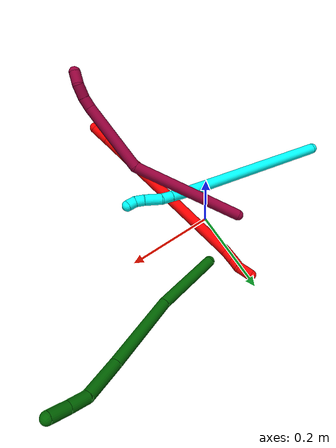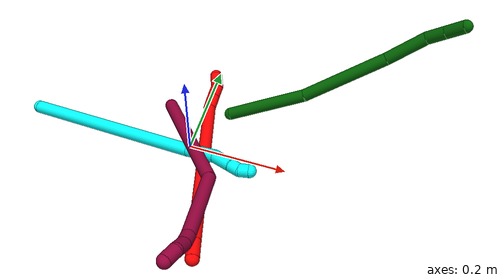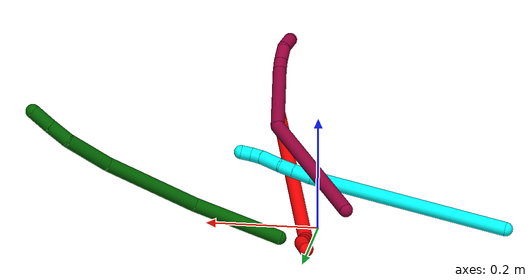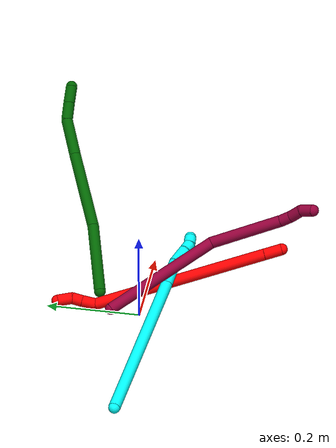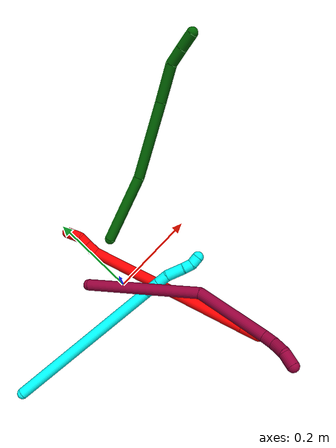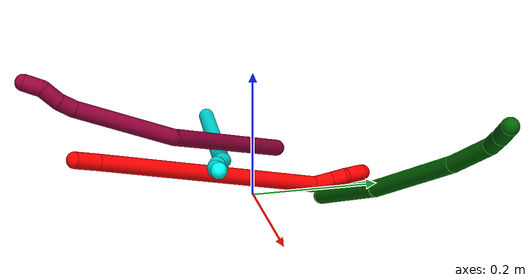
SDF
<sdf version="1.7">
 <world name="default">
  <model name="photoneo_s_sensor">
   <static>1</static>
   <pose>0 0 2 1.57079 1.57079 3.14159</pose>
   <link name="link">
    <inertial><mass>0.1</mass></inertial>
    <sensor name="sensor" type="depth">
     <update_rate>30</update_rate>
     <camera>
      <horizontal_fov>1.22</horizontal_fov>
      <image><width>1920</width><height>1200</height><format>B8G8R8</format></image>
      <clip><near>0.1</near><far>4</far></clip>
      <depth_camera><output>points</output></depth_camera>
     </camera>
     <plugin name="camera_plugin" filename="libgazebo_ros_depth_camera.so">
      <baseline>0.2</baseline>
      <alwaysOn>1</alwaysOn>
      <updateRate>0.0</updateRate>
      <cameraName>camera_ir</cameraName>
      <imageTopicName>/camera/color/image_raw</imageTopicName>
      <cameraInfoTopicName>/camera/color/camera_info</cameraInfoTopicName>
      <depthImageTopicName>/camera/depth/image_raw</depthImageTopicName>
      <depthImageCameraInfoTopicName>/camera/depth/camera_info</depthImageCameraInfoTopicName>
      <pointCloudTopicName>/camera/depth/points</pointCloudTopicName>
      <frameName>fr_optical</frameName>
      <pointCloudCutoff>0.1</pointCloudCutoff>
      <pointCloudCutoffMax>2.0</pointCloudCutoffMax>
      <distortionK1>0</distortionK1>
      <distortionK2>0</distortionK2>
      <distortionK3>0</distortionK3>
      <distortionT1>0</distortionT1>
      <distortionT2>0</distortionT2>
      <CxPrime>0</CxPrime>
      <Cx>0</Cx>
      <Cy>0</Cy>
      <focalLength>0</focalLength>
      <hackBaseline>0</hackBaseline>
     </plugin>
    </sensor>
   </link>
  </model>
  <model name="bin">
   <static>1</static>
   <link name="bottom">
    <collision name="collision-bottom">
     <pose>0 0 -0.01 0 -0 0</pose>
     <geometry><box><size>0.8 0.6 0.02</size></box></geometry>
     <surface>
      <friction><ode><mu>100</mu><mu2>100</mu2></ode></friction>
      <contact><collide_bitmask>65535</collide_bitmask></contact>
     </surface>
    </collision>
   </link>
   <link name="west_wall">
    <collision name="collision-west_wall">
     <pose>-0.41 0 0.1 0 -0 0</pose>
     <geometry><box><size>0.02 0.6 0.2</size></box></geometry>
     <surface>
      <friction><ode><mu>100</mu><mu2>100</mu2></ode></friction>
      <contact><collide_bitmask>65535</collide_bitmask></contact>
     </surface>
    </collision>
   </link>
   <link name="east_wall">
    <collision name="collision-east_wall">
     <pose>0.41 0 0.1 0 -0 0</pose>
     <geometry><box><size>0.02 0.6 0.2</size></box></geometry>
     <surface>
      <friction><ode><mu>100</mu><mu2>100</mu2></ode></friction>
      <contact><collide_bitmask>65535</collide_bitmask></contact>
     </surface>
    </collision>
   </link>
   <link name="south_wall">
    <collision name="collision-south_wall">
     <pose>0 -0.31 0.1 0 -0 0</pose>
     <geometry><box><size>0.8 0.02 0.2</size></box></geometry>
     <surface>
      <friction><ode><mu>100</mu><mu2>100</mu2></ode></friction>
      <contact><collide_bitmask>65535</collide_bitmask></contact>
     </surface>
    </collision>
   </link>
   <link name="north_wall">
    <collision name="collision-north_wall">
     <pose>0 0.31 0.1 0 -0 0</pose>
     <geometry><box><size>0.8 0.02 0.2</size></box></geometry>
     <surface>
      <friction><ode><mu>100</mu><mu2>100</mu2></ode></friction>
      <contact><collide_bitmask>65535</collide_bitmask></contact>
     </surface>
    </collision>
   </link>
  </model>
  <model name="2">
   <static>0</static>
   <link name="2">
    <collision name="collision-cylinder-e_1_1_4">
     <pose>-0.004431 0.016412 -0.008983 -2.07158 -0.232524 0.389127</pose>
     <geometry><cylinder><radius>0.0125</radius><length>0.038455</length></cylinder></geometry>
     <surface>
      <friction><ode><mu>1.16</mu><mu2>1.16</mu2><slip1>0</slip1><slip2>0</slip2></ode></friction>
      <contact><ode><kp>1e+06</kp><kd>1</kd><max_vel>0</max_vel><min_depth>0.001</min_depth></ode></contact>
     </surface>
    </collision>
    <visual name="visual-cylinder-e_1_1_4">
     <pose>-0.004431 0.016412 -0.008983 -2.07158 -0.232524 0.389127</pose>
     <geometry><cylinder><radius>0.0125</radius><length>0.038455</length></cylinder></geometry>
     <material><ambient>1 0 0 1</ambient></material>
    </visual>
    <collision name="collision-cylinder-e_2_4_5">
     <pose>-0.052749 0.192548 -0.108325 -2.08563 -0.234749 0.398995</pose>
     <geometry><cylinder><radius>0.0125</radius><length>0.377372</length></cylinder></geometry>
     <surface>
      <friction><ode><mu>1.16</mu><mu2>1.16</mu2><slip1>0</slip1><slip2>0</slip2></ode></friction>
      <contact><ode><kp>1e+06</kp><kd>1</kd><max_vel>0</max_vel><min_depth>0.001</min_depth></ode></contact>
     </surface>
    </collision>
    <visual name="visual-cylinder-e_2_4_5">
     <pose>-0.052749 0.192548 -0.108325 -2.08563 -0.234749 0.398995</pose>
     <geometry><cylinder><radius>0.0125</radius><length>0.377372</length></cylinder></geometry>
     <material><ambient>1 0 0 1</ambient></material>
    </visual>
    <collision name="collision-cylinder-e_3_5_6">
     <pose>-0.092489 0.365053 -0.205142 -2.03857 0.281924 -0.453404</pose>
     <geometry><cylinder><radius>0.0125</radius><length>0.02982</length></cylinder></geometry>
     <surface>
      <friction><ode><mu>1.16</mu><mu2>1.16</mu2><slip1>0</slip1><slip2>0</slip2></ode></friction>
      <contact><ode><kp>1e+06</kp><kd>1</kd><max_vel>0</max_vel><min_depth>0.001</min_depth></ode></contact>
     </surface>
    </collision>
    <visual name="visual-cylinder-e_3_5_6">
     <pose>-0.092489 0.365053 -0.205142 -2.03857 0.281924 -0.453404</pose>
     <geometry><cylinder><radius>0.0125</radius><length>0.02982</length></cylinder></geometry>
     <material><ambient>1 0 0 1</ambient></material>
    </visual>
    <collision name="collision-cylinder-e_4_6_7">
     <pose>-0.084763 0.387076 -0.216446 -2.05382 0.330384 -0.537996</pose>
     <geometry><cylinder><radius>0.0125</radius><length>0.022061</length></cylinder></geometry>
     <surface>
      <friction><ode><mu>1.16</mu><mu2>1.16</mu2><slip1>0</slip1><slip2>0</slip2></ode></friction>
      <contact><ode><kp>1e+06</kp><kd>1</kd><max_vel>0</max_vel><min_depth>0.001</min_depth></ode></contact>
     </surface>
    </collision>
    <visual name="visual-cylinder-e_4_6_7">
     <pose>-0.084763 0.387076 -0.216446 -2.05382 0.330384 -0.537996</pose>
     <geometry><cylinder><radius>0.0125</radius><length>0.022061</length></cylinder></geometry>
     <material><ambient>1 0 0 1</ambient></material>
    </visual>
    <collision name="collision-cylinder-e_5_7_2">
     <pose>-0.082851 0.411738 -0.225778 -1.85387 -0.103366 0.137624</pose>
     <geometry><cylinder><radius>0.0125</radius><length>0.032292</length></cylinder></geometry>
     <surface>
      <friction><ode><mu>1.16</mu><mu2>1.16</mu2><slip1>0</slip1><slip2>0</slip2></ode></friction>
      <contact><ode><kp>1e+06</kp><kd>1</kd><max_vel>0</max_vel><min_depth>0.001</min_depth></ode></contact>
     </surface>
    </collision>
    <visual name="visual-cylinder-e_5_7_2">
     <pose>-0.082851 0.411738 -0.225778 -1.85387 -0.103366 0.137624</pose>
     <geometry><cylinder><radius>0.0125</radius><length>0.032292</length></cylinder></geometry>
     <material><ambient>1 0 0 1</ambient></material>
    </visual>
    <collision name="collision-sphere-2">
     <pose>-0.084517 0.427159 -0.230264 0 -0 0</pose>
     <geometry><sphere><radius>0.0125</radius></sphere></geometry>
     <surface>
      <friction><ode><mu>1.16</mu><mu2>1.16</mu2><slip1>0</slip1><slip2>0</slip2></ode></friction>
      <contact><ode><kp>1e+06</kp><kd>1</kd><max_vel>0</max_vel><min_depth>0.001</min_depth></ode></contact>
     </surface>
    </collision>
    <visual name="visual-sphere-2">
     <pose>-0.084517 0.427159 -0.230264 0 -0 0</pose>
     <geometry><sphere><radius>0.0125</radius></sphere></geometry>
     <material><ambient>1 0 0 1</ambient></material>
    </visual>
    <collision name="collision-sphere-7">
     <pose>-0.081185 0.396317 -0.221292 0 -0 0</pose>
     <geometry><sphere><radius>0.0125</radius></sphere></geometry>
     <surface>
      <friction><ode><mu>1.16</mu><mu2>1.16</mu2><slip1>0</slip1><slip2>0</slip2></ode></friction>
      <contact><ode><kp>1e+06</kp><kd>1</kd><max_vel>0</max_vel><min_depth>0.001</min_depth></ode></contact>
     </surface>
    </collision>
    <visual name="visual-sphere-7">
     <pose>-0.081185 0.396317 -0.221292 0 -0 0</pose>
     <geometry><sphere><radius>0.0125</radius></sphere></geometry>
     <material><ambient>1 0 0 1</ambient></material>
    </visual>
    <collision name="collision-sphere-6">
     <pose>-0.088341 0.377836 -0.2116 0 -0 0</pose>
     <geometry><sphere><radius>0.0125</radius></sphere></geometry>
     <surface>
      <friction><ode><mu>1.16</mu><mu2>1.16</mu2><slip1>0</slip1><slip2>0</slip2></ode></friction>
      <contact><ode><kp>1e+06</kp><kd>1</kd><max_vel>0</max_vel><min_depth>0.001</min_depth></ode></contact>
     </surface>
    </collision>
    <visual name="visual-sphere-6">
     <pose>-0.088341 0.377836 -0.2116 0 -0 0</pose>
     <geometry><sphere><radius>0.0125</radius></sphere></geometry>
     <material><ambient>1 0 0 1</ambient></material>
    </visual>
    <collision name="collision-sphere-5">
     <pose>-0.096637 0.35227 -0.198685 0 -0 0</pose>
     <geometry><sphere><radius>0.0125</radius></sphere></geometry>
     <surface>
      <friction><ode><mu>1.16</mu><mu2>1.16</mu2><slip1>0</slip1><slip2>0</slip2></ode></friction>
      <contact><ode><kp>1e+06</kp><kd>1</kd><max_vel>0</max_vel><min_depth>0.001</min_depth></ode></contact>
     </surface>
    </collision>
    <visual name="visual-sphere-5">
     <pose>-0.096637 0.35227 -0.198685 0 -0 0</pose>
     <geometry><sphere><radius>0.0125</radius></sphere></geometry>
     <material><ambient>1 0 0 1</ambient></material>
    </visual>
    <collision name="collision-sphere-1">
     <geometry><sphere><radius>0.0125</radius></sphere></geometry>
     <surface>
      <friction><ode><mu>1.16</mu><mu2>1.16</mu2><slip1>0</slip1><slip2>0</slip2></ode></friction>
      <contact><ode><kp>1e+06</kp><kd>1</kd><max_vel>0</max_vel><min_depth>0.001</min_depth></ode></contact>
     </surface>
    </collision>
    <visual name="visual-sphere-1">
     <geometry><sphere><radius>0.0125</radius></sphere></geometry>
     <material><ambient>1 0 0 1</ambient></material>
    </visual>
    <collision name="collision-sphere-4">
     <pose>-0.008861 0.032825 -0.017965 0 -0 0</pose>
     <geometry><sphere><radius>0.0125</radius></sphere></geometry>
     <surface>
      <friction><ode><mu>1.16</mu><mu2>1.16</mu2><slip1>0</slip1><slip2>0</slip2></ode></friction>
      <contact><ode><kp>1e+06</kp><kd>1</kd><max_vel>0</max_vel><min_depth>0.001</min_depth></ode></contact>
     </surface>
    </collision>
    <visual name="visual-sphere-4">
     <pose>-0.008861 0.032825 -0.017965 0 -0 0</pose>
     <geometry><sphere><radius>0.0125</radius></sphere></geometry>
     <material><ambient>1 0 0 1</ambient></material>
    </visual>
    <inertial>
     <pose>-0.05476 0.212029 -0.118815 0 -0 0</pose>
     <mass>0.5</mass>
     <inertia>
      <ixx>0.005732</ixx>
      <ixy>0</ixy>
      <ixz>0</ixz>
      <iyy>4.2e-05</iyy>
      <iyz>0</iyz>
      <izz>-0.00279</izz>
     </inertia>
    </inertial>
   </link>
   <pose>0.113692 -0.288507 0.128217 0.350796 -0.993629 0.270817</pose>
  </model>
  <model name="3">
   <static>0</static>
   <link name="3">
    <collision name="collision-cylinder-e_1_1_4">
     <pose>0.173265 -0.039573 0.027003 0.972006 1.30104 0.764496</pose>
     <geometry><cylinder><radius>0.0125</radius><length>0.359533</length></cylinder></geometry>
     <surface>
      <friction><ode><mu>1.16</mu><mu2>1.16</mu2><slip1>0</slip1><slip2>0</slip2></ode></friction>
      <contact><ode><kp>1e+06</kp><kd>1</kd><max_vel>0</max_vel><min_depth>0.001</min_depth></ode></contact>
     </surface>
    </collision>
    <visual name="visual-cylinder-e_1_1_4">
     <pose>0.173265 -0.039573 0.027003 0.972006 1.30104 0.764496</pose>
     <geometry><cylinder><radius>0.0125</radius><length>0.359533</length></cylinder></geometry>
     <material><ambient>0.003922 1 0.996078 1</ambient></material>
    </visual>
    <collision name="collision-cylinder-e_2_4_5">
     <pose>0.362884 -0.083764 0.05817 0.837104 1.20741 0.595286</pose>
     <geometry><cylinder><radius>0.0125</radius><length>0.034991</length></cylinder></geometry>
     <surface>
      <friction><ode><mu>1.16</mu><mu2>1.16</mu2><slip1>0</slip1><slip2>0</slip2></ode></friction>
      <contact><ode><kp>1e+06</kp><kd>1</kd><max_vel>0</max_vel><min_depth>0.001</min_depth></ode></contact>
     </surface>
    </collision>
    <visual name="visual-cylinder-e_2_4_5">
     <pose>0.362884 -0.083764 0.05817 0.837104 1.20741 0.595286</pose>
     <geometry><cylinder><radius>0.0125</radius><length>0.034991</length></cylinder></geometry>
     <material><ambient>0.003922 1 0.996078 1</ambient></material>
    </visual>
    <collision name="collision-cylinder-e_3_5_6">
     <pose>0.391058 -0.091867 0.06565 0.810282 1.18434 0.561747</pose>
     <geometry><cylinder><radius>0.0125</radius><length>0.025524</length></cylinder></geometry>
     <surface>
      <friction><ode><mu>1.16</mu><mu2>1.16</mu2><slip1>0</slip1><slip2>0</slip2></ode></friction>
      <contact><ode><kp>1e+06</kp><kd>1</kd><max_vel>0</max_vel><min_depth>0.001</min_depth></ode></contact>
     </surface>
    </collision>
    <visual name="visual-cylinder-e_3_5_6">
     <pose>0.391058 -0.091867 0.06565 0.810282 1.18434 0.561747</pose>
     <geometry><cylinder><radius>0.0125</radius><length>0.025524</length></cylinder></geometry>
     <material><ambient>0.003922 1 0.996078 1</ambient></material>
    </visual>
    <collision name="collision-cylinder-e_4_6_7">
     <pose>0.420152 -0.104708 0.070753 1.38201 1.06684 0.908609</pose>
     <geometry><cylinder><radius>0.0125</radius><length>0.03945</length></cylinder></geometry>
     <surface>
      <friction><ode><mu>1.16</mu><mu2>1.16</mu2><slip1>0</slip1><slip2>0</slip2></ode></friction>
      <contact><ode><kp>1e+06</kp><kd>1</kd><max_vel>0</max_vel><min_depth>0.001</min_depth></ode></contact>
     </surface>
    </collision>
    <visual name="visual-cylinder-e_4_6_7">
     <pose>0.420152 -0.104708 0.070753 1.38201 1.06684 0.908609</pose>
     <geometry><cylinder><radius>0.0125</radius><length>0.03945</length></cylinder></geometry>
     <material><ambient>0.003922 1 0.996078 1</ambient></material>
    </visual>
    <collision name="collision-cylinder-e_5_7_8">
     <pose>0.446842 -0.117977 0.072714 1.52638 1.17663 1.13596</pose>
     <geometry><cylinder><radius>0.0125</radius><length>0.020399</length></cylinder></geometry>
     <surface>
      <friction><ode><mu>1.16</mu><mu2>1.16</mu2><slip1>0</slip1><slip2>0</slip2></ode></friction>
      <contact><ode><kp>1e+06</kp><kd>1</kd><max_vel>0</max_vel><min_depth>0.001</min_depth></ode></contact>
     </surface>
    </collision>
    <visual name="visual-cylinder-e_5_7_8">
     <pose>0.446842 -0.117977 0.072714 1.52638 1.17663 1.13596</pose>
     <geometry><cylinder><radius>0.0125</radius><length>0.020399</length></cylinder></geometry>
     <material><ambient>0.003922 1 0.996078 1</ambient></material>
    </visual>
    <collision name="collision-cylinder-e_6_8_2">
     <pose>0.465987 -0.122379 0.075369 0.194176 1.31653 0.150352</pose>
     <geometry><cylinder><radius>0.0125</radius><length>0.020102</length></cylinder></geometry>
     <surface>
      <friction><ode><mu>1.16</mu><mu2>1.16</mu2><slip1>0</slip1><slip2>0</slip2></ode></friction>
      <contact><ode><kp>1e+06</kp><kd>1</kd><max_vel>0</max_vel><min_depth>0.001</min_depth></ode></contact>
     </surface>
    </collision>
    <visual name="visual-cylinder-e_6_8_2">
     <pose>0.465987 -0.122379 0.075369 0.194176 1.31653 0.150352</pose>
     <geometry><cylinder><radius>0.0125</radius><length>0.020102</length></cylinder></geometry>
     <material><ambient>0.003922 1 0.996078 1</ambient></material>
    </visual>
    <collision name="collision-sphere-2">
     <pose>0.475715 -0.122866 0.077849 0 -0 0</pose>
     <geometry><sphere><radius>0.0125</radius></sphere></geometry>
     <surface>
      <friction><ode><mu>1.16</mu><mu2>1.16</mu2><slip1>0</slip1><slip2>0</slip2></ode></friction>
      <contact><ode><kp>1e+06</kp><kd>1</kd><max_vel>0</max_vel><min_depth>0.001</min_depth></ode></contact>
     </surface>
    </collision>
    <visual name="visual-sphere-2">
     <pose>0.475715 -0.122866 0.077849 0 -0 0</pose>
     <geometry><sphere><radius>0.0125</radius></sphere></geometry>
     <material><ambient>0.003922 1 0.996078 1</ambient></material>
    </visual>
    <collision name="collision-sphere-4">
     <pose>0.34653 -0.079145 0.054006 0 -0 0</pose>
     <geometry><sphere><radius>0.0125</radius></sphere></geometry>
     <surface>
      <friction><ode><mu>1.16</mu><mu2>1.16</mu2><slip1>0</slip1><slip2>0</slip2></ode></friction>
      <contact><ode><kp>1e+06</kp><kd>1</kd><max_vel>0</max_vel><min_depth>0.001</min_depth></ode></contact>
     </surface>
    </collision>
    <visual name="visual-sphere-4">
     <pose>0.34653 -0.079145 0.054006 0 -0 0</pose>
     <geometry><sphere><radius>0.0125</radius></sphere></geometry>
     <material><ambient>0.003922 1 0.996078 1</ambient></material>
    </visual>
    <collision name="collision-sphere-1">
     <geometry><sphere><radius>0.0125</radius></sphere></geometry>
     <surface>
      <friction><ode><mu>1.16</mu><mu2>1.16</mu2><slip1>0</slip1><slip2>0</slip2></ode></friction>
      <contact><ode><kp>1e+06</kp><kd>1</kd><max_vel>0</max_vel><min_depth>0.001</min_depth></ode></contact>
     </surface>
    </collision>
    <visual name="visual-sphere-1">
     <geometry><sphere><radius>0.0125</radius></sphere></geometry>
     <material><ambient>0.003922 1 0.996078 1</ambient></material>
    </visual>
    <collision name="collision-sphere-8">
     <pose>0.45626 -0.121891 0.072888 0 -0 0</pose>
     <geometry><sphere><radius>0.0125</radius></sphere></geometry>
     <surface>
      <friction><ode><mu>1.16</mu><mu2>1.16</mu2><slip1>0</slip1><slip2>0</slip2></ode></friction>
      <contact><ode><kp>1e+06</kp><kd>1</kd><max_vel>0</max_vel><min_depth>0.001</min_depth></ode></contact>
     </surface>
    </collision>
    <visual name="visual-sphere-8">
     <pose>0.45626 -0.121891 0.072888 0 -0 0</pose>
     <geometry><sphere><radius>0.0125</radius></sphere></geometry>
     <material><ambient>0.003922 1 0.996078 1</ambient></material>
    </visual>
    <collision name="collision-sphere-5">
     <pose>0.379237 -0.088383 0.062334 0 -0 0</pose>
     <geometry><sphere><radius>0.0125</radius></sphere></geometry>
     <surface>
      <friction><ode><mu>1.16</mu><mu2>1.16</mu2><slip1>0</slip1><slip2>0</slip2></ode></friction>
      <contact><ode><kp>1e+06</kp><kd>1</kd><max_vel>0</max_vel><min_depth>0.001</min_depth></ode></contact>
     </surface>
    </collision>
    <visual name="visual-sphere-5">
     <pose>0.379237 -0.088383 0.062334 0 -0 0</pose>
     <geometry><sphere><radius>0.0125</radius></sphere></geometry>
     <material><ambient>0.003922 1 0.996078 1</ambient></material>
    </visual>
    <collision name="collision-sphere-6">
     <pose>0.402879 -0.095352 0.068965 0 -0 0</pose>
     <geometry><sphere><radius>0.0125</radius></sphere></geometry>
     <surface>
      <friction><ode><mu>1.16</mu><mu2>1.16</mu2><slip1>0</slip1><slip2>0</slip2></ode></friction>
      <contact><ode><kp>1e+06</kp><kd>1</kd><max_vel>0</max_vel><min_depth>0.001</min_depth></ode></contact>
     </surface>
    </collision>
    <visual name="visual-sphere-6">
     <pose>0.402879 -0.095352 0.068965 0 -0 0</pose>
     <geometry><sphere><radius>0.0125</radius></sphere></geometry>
     <material><ambient>0.003922 1 0.996078 1</ambient></material>
    </visual>
    <collision name="collision-sphere-7">
     <pose>0.437425 -0.114064 0.07254 0 -0 0</pose>
     <geometry><sphere><radius>0.0125</radius></sphere></geometry>
     <surface>
      <friction><ode><mu>1.16</mu><mu2>1.16</mu2><slip1>0</slip1><slip2>0</slip2></ode></friction>
      <contact><ode><kp>1e+06</kp><kd>1</kd><max_vel>0</max_vel><min_depth>0.001</min_depth></ode></contact>
     </surface>
    </collision>
    <visual name="visual-sphere-7">
     <pose>0.437425 -0.114064 0.07254 0 -0 0</pose>
     <geometry><sphere><radius>0.0125</radius></sphere></geometry>
     <material><ambient>0.003922 1 0.996078 1</ambient></material>
    </visual>
    <inertial>
     <pose>0.240063 -0.057002 0.038418 0 -0 0</pose>
     <mass>0.5</mass>
     <inertia>
      <ixx>0.001511</ixx>
      <ixy>0</ixy>
      <ixz>0</ixz>
      <iyy>0.00445</iyy>
      <iyz>0</iyz>
      <izz>-0.002894</izz>
     </inertia>
    </inertial>
   </link>
   <pose>-0.331046 -0.007339 0.011494 -0.404971 0.048988 0.009121</pose>
  </model>
  <model name="6">
   <static>0</static>
   <link name="6">
    <collision name="collision-cylinder-e_1_1_4">
     <pose>0.004832 0.007058 0.080861 -0.087061 0.059463 -0.002591</pose>
     <geometry><cylinder><radius>0.0125</radius><length>0.162625</length></cylinder></geometry>
     <surface>
      <friction><ode><mu>1.16</mu><mu2>1.16</mu2><slip1>0</slip1><slip2>0</slip2></ode></friction>
      <contact><ode><kp>1e+06</kp><kd>1</kd><max_vel>0</max_vel><min_depth>0.001</min_depth></ode></contact>
     </surface>
    </collision>
    <visual name="visual-cylinder-e_1_1_4">
     <pose>0.004832 0.007058 0.080861 -0.087061 0.059463 -0.002591</pose>
     <geometry><cylinder><radius>0.0125</radius><length>0.162625</length></cylinder></geometry>
     <material><ambient>0 0.392157 0.003922 1</ambient></material>
    </visual>
    <collision name="collision-cylinder-e_2_4_5">
     <pose>0.019157 0.00724 0.249083 0.078535 0.107904 0.004243</pose>
     <geometry><cylinder><radius>0.0125</radius><length>0.176287</length></cylinder></geometry>
     <surface>
      <friction><ode><mu>1.16</mu><mu2>1.16</mu2><slip1>0</slip1><slip2>0</slip2></ode></friction>
      <contact><ode><kp>1e+06</kp><kd>1</kd><max_vel>0</max_vel><min_depth>0.001</min_depth></ode></contact>
     </surface>
    </collision>
    <visual name="visual-cylinder-e_2_4_5">
     <pose>0.019157 0.00724 0.249083 0.078535 0.107904 0.004243</pose>
     <geometry><cylinder><radius>0.0125</radius><length>0.176287</length></cylinder></geometry>
     <material><ambient>0 0.392157 0.003922 1</ambient></material>
    </visual>
    <collision name="collision-cylinder-e_3_5_6">
     <pose>0.036931 -0.003872 0.37722 0.103544 0.199324 0.010363</pose>
     <geometry><cylinder><radius>0.0125</radius><length>0.083647</length></cylinder></geometry>
     <surface>
      <friction><ode><mu>1.16</mu><mu2>1.16</mu2><slip1>0</slip1><slip2>0</slip2></ode></friction>
      <contact><ode><kp>1e+06</kp><kd>1</kd><max_vel>0</max_vel><min_depth>0.001</min_depth></ode></contact>
     </surface>
    </collision>
    <visual name="visual-cylinder-e_3_5_6">
     <pose>0.036931 -0.003872 0.37722 0.103544 0.199324 0.010363</pose>
     <geometry><cylinder><radius>0.0125</radius><length>0.083647</length></cylinder></geometry>
     <material><ambient>0 0.392157 0.003922 1</ambient></material>
    </visual>
    <collision name="collision-cylinder-e_4_6_7">
     <pose>0.052299 -0.004503 0.435856 -0.199212 0.370938 -0.037497</pose>
     <geometry><cylinder><radius>0.0125</radius><length>0.039101</length></cylinder></geometry>
     <surface>
      <friction><ode><mu>1.16</mu><mu2>1.16</mu2><slip1>0</slip1><slip2>0</slip2></ode></friction>
      <contact><ode><kp>1e+06</kp><kd>1</kd><max_vel>0</max_vel><min_depth>0.001</min_depth></ode></contact>
     </surface>
    </collision>
    <visual name="visual-cylinder-e_4_6_7">
     <pose>0.052299 -0.004503 0.435856 -0.199212 0.370938 -0.037497</pose>
     <geometry><cylinder><radius>0.0125</radius><length>0.039101</length></cylinder></geometry>
     <material><ambient>0 0.392157 0.003922 1</ambient></material>
    </visual>
    <collision name="collision-cylinder-e_5_7_2">
     <pose>0.067038 0.002916 0.470875 -0.218729 0.410607 -0.045722</pose>
     <geometry><cylinder><radius>0.0125</radius><length>0.03834</length></cylinder></geometry>
     <surface>
      <friction><ode><mu>1.16</mu><mu2>1.16</mu2><slip1>0</slip1><slip2>0</slip2></ode></friction>
      <contact><ode><kp>1e+06</kp><kd>1</kd><max_vel>0</max_vel><min_depth>0.001</min_depth></ode></contact>
     </surface>
    </collision>
    <visual name="visual-cylinder-e_5_7_2">
     <pose>0.067038 0.002916 0.470875 -0.218729 0.410607 -0.045722</pose>
     <geometry><cylinder><radius>0.0125</radius><length>0.03834</length></cylinder></geometry>
     <material><ambient>0 0.392157 0.003922 1</ambient></material>
    </visual>
    <collision name="collision-sphere-2">
     <pose>0.07469 0.00673 0.488032 0 -0 0</pose>
     <geometry><sphere><radius>0.0125</radius></sphere></geometry>
     <surface>
      <friction><ode><mu>1.16</mu><mu2>1.16</mu2><slip1>0</slip1><slip2>0</slip2></ode></friction>
      <contact><ode><kp>1e+06</kp><kd>1</kd><max_vel>0</max_vel><min_depth>0.001</min_depth></ode></contact>
     </surface>
    </collision>
    <visual name="visual-sphere-2">
     <pose>0.07469 0.00673 0.488032 0 -0 0</pose>
     <geometry><sphere><radius>0.0125</radius></sphere></geometry>
     <material><ambient>0 0.392157 0.003922 1</ambient></material>
    </visual>
    <collision name="collision-sphere-7">
     <pose>0.059386 -0.000897 0.453717 0 -0 0</pose>
     <geometry><sphere><radius>0.0125</radius></sphere></geometry>
     <surface>
      <friction><ode><mu>1.16</mu><mu2>1.16</mu2><slip1>0</slip1><slip2>0</slip2></ode></friction>
      <contact><ode><kp>1e+06</kp><kd>1</kd><max_vel>0</max_vel><min_depth>0.001</min_depth></ode></contact>
     </surface>
    </collision>
    <visual name="visual-sphere-7">
     <pose>0.059386 -0.000897 0.453717 0 -0 0</pose>
     <geometry><sphere><radius>0.0125</radius></sphere></geometry>
     <material><ambient>0 0.392157 0.003922 1</ambient></material>
    </visual>
    <collision name="collision-sphere-6">
     <pose>0.045212 -0.008109 0.417996 0 -0 0</pose>
     <geometry><sphere><radius>0.0125</radius></sphere></geometry>
     <surface>
      <friction><ode><mu>1.16</mu><mu2>1.16</mu2><slip1>0</slip1><slip2>0</slip2></ode></friction>
      <contact><ode><kp>1e+06</kp><kd>1</kd><max_vel>0</max_vel><min_depth>0.001</min_depth></ode></contact>
     </surface>
    </collision>
    <visual name="visual-sphere-6">
     <pose>0.045212 -0.008109 0.417996 0 -0 0</pose>
     <geometry><sphere><radius>0.0125</radius></sphere></geometry>
     <material><ambient>0 0.392157 0.003922 1</ambient></material>
    </visual>
    <collision name="collision-sphere-5">
     <pose>0.02865 0.000365 0.336444 0 -0 0</pose>
     <geometry><sphere><radius>0.0125</radius></sphere></geometry>
     <surface>
      <friction><ode><mu>1.16</mu><mu2>1.16</mu2><slip1>0</slip1><slip2>0</slip2></ode></friction>
      <contact><ode><kp>1e+06</kp><kd>1</kd><max_vel>0</max_vel><min_depth>0.001</min_depth></ode></contact>
     </surface>
    </collision>
    <visual name="visual-sphere-5">
     <pose>0.02865 0.000365 0.336444 0 -0 0</pose>
     <geometry><sphere><radius>0.0125</radius></sphere></geometry>
     <material><ambient>0 0.392157 0.003922 1</ambient></material>
    </visual>
    <collision name="collision-sphere-1">
     <geometry><sphere><radius>0.0125</radius></sphere></geometry>
     <surface>
      <friction><ode><mu>1.16</mu><mu2>1.16</mu2><slip1>0</slip1><slip2>0</slip2></ode></friction>
      <contact><ode><kp>1e+06</kp><kd>1</kd><max_vel>0</max_vel><min_depth>0.001</min_depth></ode></contact>
     </surface>
    </collision>
    <visual name="visual-sphere-1">
     <geometry><sphere><radius>0.0125</radius></sphere></geometry>
     <material><ambient>0 0.392157 0.003922 1</ambient></material>
    </visual>
    <collision name="collision-sphere-4">
     <pose>0.009664 0.014115 0.161722 0 -0 0</pose>
     <geometry><sphere><radius>0.0125</radius></sphere></geometry>
     <surface>
      <friction><ode><mu>1.16</mu><mu2>1.16</mu2><slip1>0</slip1><slip2>0</slip2></ode></friction>
      <contact><ode><kp>1e+06</kp><kd>1</kd><max_vel>0</max_vel><min_depth>0.001</min_depth></ode></contact>
     </surface>
    </collision>
    <visual name="visual-sphere-4">
     <pose>0.009664 0.014115 0.161722 0 -0 0</pose>
     <geometry><sphere><radius>0.0125</radius></sphere></geometry>
     <material><ambient>0 0.392157 0.003922 1</ambient></material>
    </visual>
    <inertial>
     <pose>0.023735 0.004072 0.247419 0 -0 0</pose>
     <mass>0.5</mass>
     <inertia>
      <ixx>0.000894</ixx>
      <ixy>0</ixy>
      <ixz>0</ixz>
      <iyy>0.000891</iyy>
      <iyz>0</iyz>
      <izz>-4.1e-05</izz>
     </inertia>
    </inertial>
   </link>
   <pose>0.055299 0.095978 0.011488 -0.575822 -1.09861 -2.12262</pose>
  </model>
  <model name="8">
   <static>0</static>
   <link name="8">
    <collision name="collision-cylinder-e_1_1_4">
     <pose>0.024435 -0.023194 0.12455 0.184115 0.190534 0.017643</pose>
     <geometry><cylinder><radius>0.0125</radius><length>0.258052</length></cylinder></geometry>
     <surface>
      <friction><ode><mu>1.16</mu><mu2>1.16</mu2><slip1>0</slip1><slip2>0</slip2></ode></friction>
      <contact><ode><kp>1e+06</kp><kd>1</kd><max_vel>0</max_vel><min_depth>0.001</min_depth></ode></contact>
     </surface>
    </collision>
    <visual name="visual-cylinder-e_1_1_4">
     <pose>0.024435 -0.023194 0.12455 0.184115 0.190534 0.017643</pose>
     <geometry><cylinder><radius>0.0125</radius><length>0.258052</length></cylinder></geometry>
     <material><ambient>0.584314 0 0.227451 1</ambient></material>
    </visual>
    <collision name="collision-cylinder-e_2_4_5">
     <pose>0.069167 -0.095677 0.308288 0.694389 0.257657 0.093684</pose>
     <geometry><cylinder><radius>0.0125</radius><length>0.159305</length></cylinder></geometry>
     <surface>
      <friction><ode><mu>1.16</mu><mu2>1.16</mu2><slip1>0</slip1><slip2>0</slip2></ode></friction>
      <contact><ode><kp>1e+06</kp><kd>1</kd><max_vel>0</max_vel><min_depth>0.001</min_depth></ode></contact>
     </surface>
    </collision>
    <visual name="visual-cylinder-e_2_4_5">
     <pose>0.069167 -0.095677 0.308288 0.694389 0.257657 0.093684</pose>
     <geometry><cylinder><radius>0.0125</radius><length>0.159305</length></cylinder></geometry>
     <material><ambient>0.584314 0 0.227451 1</ambient></material>
    </visual>
    <collision name="collision-cylinder-e_3_5_6">
     <pose>0.09086 -0.153455 0.376313 0.765358 0.113394 0.045685</pose>
     <geometry><cylinder><radius>0.0125</radius><length>0.024667</length></cylinder></geometry>
     <surface>
      <friction><ode><mu>1.16</mu><mu2>1.16</mu2><slip1>0</slip1><slip2>0</slip2></ode></friction>
      <contact><ode><kp>1e+06</kp><kd>1</kd><max_vel>0</max_vel><min_depth>0.001</min_depth></ode></contact>
     </surface>
    </collision>
    <visual name="visual-cylinder-e_3_5_6">
     <pose>0.09086 -0.153455 0.376313 0.765358 0.113394 0.045685</pose>
     <geometry><cylinder><radius>0.0125</radius><length>0.024667</length></cylinder></geometry>
     <material><ambient>0.584314 0 0.227451 1</ambient></material>
    </visual>
    <collision name="collision-cylinder-e_4_6_7">
     <pose>0.090926 -0.173617 0.394464 0.897295 -0.088776 -0.042757</pose>
     <geometry><cylinder><radius>0.0125</radius><length>0.029985</length></cylinder></geometry>
     <surface>
      <friction><ode><mu>1.16</mu><mu2>1.16</mu2><slip1>0</slip1><slip2>0</slip2></ode></friction>
      <contact><ode><kp>1e+06</kp><kd>1</kd><max_vel>0</max_vel><min_depth>0.001</min_depth></ode></contact>
     </surface>
    </collision>
    <visual name="visual-cylinder-e_4_6_7">
     <pose>0.090926 -0.173617 0.394464 0.897295 -0.088776 -0.042757</pose>
     <geometry><cylinder><radius>0.0125</radius><length>0.029985</length></cylinder></geometry>
     <material><ambient>0.584314 0 0.227451 1</ambient></material>
    </visual>
    <collision name="collision-cylinder-e_5_7_2">
     <pose>0.093998 -0.197219 0.409625 1.11511 0.319924 0.200532</pose>
     <geometry><cylinder><radius>0.0125</radius><length>0.027991</length></cylinder></geometry>
     <surface>
      <friction><ode><mu>1.16</mu><mu2>1.16</mu2><slip1>0</slip1><slip2>0</slip2></ode></friction>
      <contact><ode><kp>1e+06</kp><kd>1</kd><max_vel>0</max_vel><min_depth>0.001</min_depth></ode></contact>
     </surface>
    </collision>
    <visual name="visual-cylinder-e_5_7_2">
     <pose>0.093998 -0.197219 0.409625 1.11511 0.319924 0.200532</pose>
     <geometry><cylinder><radius>0.0125</radius><length>0.027991</length></cylinder></geometry>
     <material><ambient>0.584314 0 0.227451 1</ambient></material>
    </visual>
    <collision name="collision-sphere-2">
     <pose>0.0984 -0.209149 0.415472 0 -0 0</pose>
     <geometry><sphere><radius>0.0125</radius></sphere></geometry>
     <surface>
      <friction><ode><mu>1.16</mu><mu2>1.16</mu2><slip1>0</slip1><slip2>0</slip2></ode></friction>
      <contact><ode><kp>1e+06</kp><kd>1</kd><max_vel>0</max_vel><min_depth>0.001</min_depth></ode></contact>
     </surface>
    </collision>
    <visual name="visual-sphere-2">
     <pose>0.0984 -0.209149 0.415472 0 -0 0</pose>
     <geometry><sphere><radius>0.0125</radius></sphere></geometry>
     <material><ambient>0.584314 0 0.227451 1</ambient></material>
    </visual>
    <collision name="collision-sphere-7">
     <pose>0.089597 -0.18529 0.403778 0 -0 0</pose>
     <geometry><sphere><radius>0.0125</radius></sphere></geometry>
     <surface>
      <friction><ode><mu>1.16</mu><mu2>1.16</mu2><slip1>0</slip1><slip2>0</slip2></ode></friction>
      <contact><ode><kp>1e+06</kp><kd>1</kd><max_vel>0</max_vel><min_depth>0.001</min_depth></ode></contact>
     </surface>
    </collision>
    <visual name="visual-sphere-7">
     <pose>0.089597 -0.18529 0.403778 0 -0 0</pose>
     <geometry><sphere><radius>0.0125</radius></sphere></geometry>
     <material><ambient>0.584314 0 0.227451 1</ambient></material>
    </visual>
    <collision name="collision-sphere-6">
     <pose>0.092255 -0.161945 0.38515 0 -0 0</pose>
     <geometry><sphere><radius>0.0125</radius></sphere></geometry>
     <surface>
      <friction><ode><mu>1.16</mu><mu2>1.16</mu2><slip1>0</slip1><slip2>0</slip2></ode></friction>
      <contact><ode><kp>1e+06</kp><kd>1</kd><max_vel>0</max_vel><min_depth>0.001</min_depth></ode></contact>
     </surface>
    </collision>
    <visual name="visual-sphere-6">
     <pose>0.092255 -0.161945 0.38515 0 -0 0</pose>
     <geometry><sphere><radius>0.0125</radius></sphere></geometry>
     <material><ambient>0.584314 0 0.227451 1</ambient></material>
    </visual>
    <collision name="collision-sphere-5">
     <pose>0.089464 -0.144965 0.367476 0 -0 0</pose>
     <geometry><sphere><radius>0.0125</radius></sphere></geometry>
     <surface>
      <friction><ode><mu>1.16</mu><mu2>1.16</mu2><slip1>0</slip1><slip2>0</slip2></ode></friction>
      <contact><ode><kp>1e+06</kp><kd>1</kd><max_vel>0</max_vel><min_depth>0.001</min_depth></ode></contact>
     </surface>
    </collision>
    <visual name="visual-sphere-5">
     <pose>0.089464 -0.144965 0.367476 0 -0 0</pose>
     <geometry><sphere><radius>0.0125</radius></sphere></geometry>
     <material><ambient>0.584314 0 0.227451 1</ambient></material>
    </visual>
    <collision name="collision-sphere-1">
     <geometry><sphere><radius>0.0125</radius></sphere></geometry>
     <surface>
      <friction><ode><mu>1.16</mu><mu2>1.16</mu2><slip1>0</slip1><slip2>0</slip2></ode></friction>
      <contact><ode><kp>1e+06</kp><kd>1</kd><max_vel>0</max_vel><min_depth>0.001</min_depth></ode></contact>
     </surface>
    </collision>
    <visual name="visual-sphere-1">
     <geometry><sphere><radius>0.0125</radius></sphere></geometry>
     <material><ambient>0.584314 0 0.227451 1</ambient></material>
    </visual>
    <collision name="collision-sphere-4">
     <pose>0.048871 -0.046388 0.2491 0 -0 0</pose>
     <geometry><sphere><radius>0.0125</radius></sphere></geometry>
     <surface>
      <friction><ode><mu>1.16</mu><mu2>1.16</mu2><slip1>0</slip1><slip2>0</slip2></ode></friction>
      <contact><ode><kp>1e+06</kp><kd>1</kd><max_vel>0</max_vel><min_depth>0.001</min_depth></ode></contact>
     </surface>
    </collision>
    <visual name="visual-sphere-4">
     <pose>0.048871 -0.046388 0.2491 0 -0 0</pose>
     <geometry><sphere><radius>0.0125</radius></sphere></geometry>
     <material><ambient>0.584314 0 0.227451 1</ambient></material>
    </visual>
    <inertial>
     <pose>0.049846 -0.071477 0.227657 0 -0 0</pose>
     <mass>0.5</mass>
     <inertia>
      <ixx>0.001819</ixx>
      <ixy>0</ixy>
      <ixz>0</ixz>
      <iyy>0.001731</iyy>
      <iyz>0</iyz>
      <izz>0.000149</izz>
     </inertia>
    </inertial>
   </link>
   <pose>-0.05536 0.050846 0.052485 -0.779335 0.909531 -1.54014</pose>
  </model>
 </world>
</sdf>
